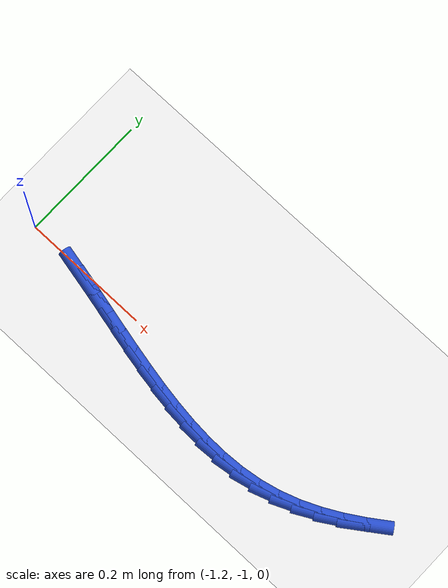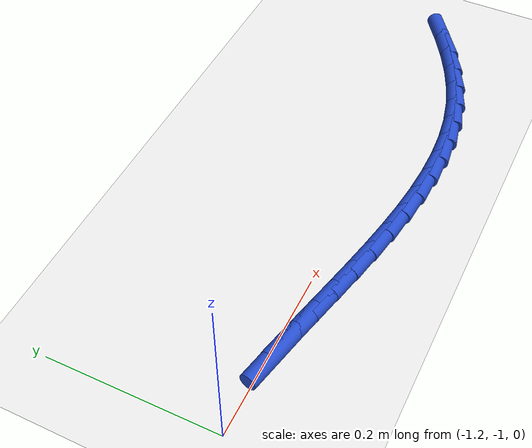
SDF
<sdf version="1.6">
 <world name="default">
  <model name="ground_plane">
   <static>1</static>
   <link name="link">
    <collision name="collision">
     <geometry><plane><normal>0 0 1</normal><size>100 100</size></plane></geometry>
     <surface><friction><ode><mu>100</mu><mu2>50</mu2></ode></friction></surface>
    </collision>
    <visual name="visual">
     <cast_shadows>0</cast_shadows>
     <geometry><plane><normal>0 0 1</normal><size>100 100</size></plane></geometry>
     <material>
      <script><uri>file://media/materials/scripts/gazebo.material</uri><name>Gazebo/WhiteGlow</name></script>
     </material>
    </visual>
   </link>
  </model>
  <model name="line">
   <link name="link_157">
    <pose>-1.104658915932224 -1.0059052333194143 0.01 0 1.57 -0.2153557256395974</pose>
    <collision name="collision">
     <geometry><cylinder><radius>0.01</radius><length>0.08</length></cylinder></geometry>
    </collision>
    <visual name="visual">
     <material>
      <script><name>Gazebo/Blue</name><uri>file://media/materials/scripts/gazebo.material</uri></script>
     </material>
     <geometry><cylinder><radius>0.01</radius><length>0.08</length></cylinder></geometry>
    </visual>
   </link>
   <link name="link_158">
    <pose>-1.0722514834036314 -1.0129942921496535 0.01 0 1.57 -0.22709151694110521</pose>
    <collision name="collision">
     <geometry><cylinder><radius>0.01</radius><length>0.08</length></cylinder></geometry>
    </collision>
    <visual name="visual">
     <material>
      <script><name>Gazebo/Blue</name><uri>file://media/materials/scripts/gazebo.material</uri></script>
     </material>
     <geometry><cylinder><radius>0.01</radius><length>0.08</length></cylinder></geometry>
    </visual>
   </link>
   <link name="link_159">
    <pose>-1.0395407714345182 -1.020553001904141 0.01 0 1.57 -0.23066036260756495</pose>
    <collision name="collision">
     <geometry><cylinder><radius>0.01</radius><length>0.08</length></cylinder></geometry>
    </collision>
    <visual name="visual">
     <material>
      <script><name>Gazebo/Blue</name><uri>file://media/materials/scripts/gazebo.material</uri></script>
     </material>
     <geometry><cylinder><radius>0.01</radius><length>0.08</length></cylinder></geometry>
    </visual>
   </link>
   <link name="link_160">
    <pose>-1.0065901002712745 -1.0282911387035154 0.01 0 1.57 -0.22602225187632505</pose>
    <collision name="collision">
     <geometry><cylinder><radius>0.01</radius><length>0.08</length></cylinder></geometry>
    </collision>
    <visual name="visual">
     <material>
      <script><name>Gazebo/Blue</name><uri>file://media/materials/scripts/gazebo.material</uri></script>
     </material>
     <geometry><cylinder><radius>0.01</radius><length>0.08</length></cylinder></geometry>
    </visual>
   </link>
   <link name="link_161">
    <pose>-0.9734819496391559 -1.0359044050806647 0.01 0 1.57 -0.21320790119155292</pose>
    <collision name="collision">
     <geometry><cylinder><radius>0.01</radius><length>0.08</length></cylinder></geometry>
    </collision>
    <visual name="visual">
     <material>
      <script><name>Gazebo/Blue</name><uri>file://media/materials/scripts/gazebo.material</uri></script>
     </material>
     <geometry><cylinder><radius>0.01</radius><length>0.08</length></cylinder></geometry>
    </visual>
   </link>
   <link name="link_162">
    <pose>-0.9402987992634193 -1.0430885035684778 0.01 0 1.57 -0.19204245035985307</pose>
    <collision name="collision">
     <geometry><cylinder><radius>0.01</radius><length>0.08</length></cylinder></geometry>
    </collision>
    <visual name="visual">
     <material>
      <script><name>Gazebo/Blue</name><uri>file://media/materials/scripts/gazebo.material</uri></script>
     </material>
     <geometry><cylinder><radius>0.01</radius><length>0.08</length></cylinder></geometry>
    </visual>
   </link>
   <link name="link_163">
    <pose>-0.9071231288693208 -1.0495391366998434 0.01 0 1.57 -0.16216483205141186</pose>
    <collision name="collision">
     <geometry><cylinder><radius>0.01</radius><length>0.08</length></cylinder></geometry>
    </collision>
    <visual name="visual">
     <material>
      <script><name>Gazebo/Blue</name><uri>file://media/materials/scripts/gazebo.material</uri></script>
     </material>
     <geometry><cylinder><radius>0.01</radius><length>0.08</length></cylinder></geometry>
    </visual>
   </link>
   <link name="link_164">
    <pose>-0.8740374181821156 -1.05495200700765 0.01 0 1.57 -0.12305798340003392</pose>
    <collision name="collision">
     <geometry><cylinder><radius>0.01</radius><length>0.08</length></cylinder></geometry>
    </collision>
    <visual name="visual">
     <material>
      <script><name>Gazebo/Blue</name><uri>file://media/materials/scripts/gazebo.material</uri></script>
     </material>
     <geometry><cylinder><radius>0.01</radius><length>0.08</length></cylinder></geometry>
    </visual>
   </link>
   <link name="link_165">
    <pose>-0.8411241469270613 -1.0590228170247848 0.01 0 1.57 -0.0741008951526817</pose>
    <collision name="collision">
     <geometry><cylinder><radius>0.01</radius><length>0.08</length></cylinder></geometry>
    </collision>
    <visual name="visual">
     <material>
      <script><name>Gazebo/Blue</name><uri>file://media/materials/scripts/gazebo.material</uri></script>
     </material>
     <geometry><cylinder><radius>0.01</radius><length>0.08</length></cylinder></geometry>
    </visual>
   </link>
   <link name="link_166">
    <pose>-0.8084657948294136 -1.0614472692841372 0.01 0 1.57 -0.01465807946904993</pose>
    <collision name="collision">
     <geometry><cylinder><radius>0.01</radius><length>0.08</length></cylinder></geometry>
    </collision>
    <visual name="visual">
     <material>
      <script><name>Gazebo/Blue</name><uri>file://media/materials/scripts/gazebo.material</uri></script>
     </material>
     <geometry><cylinder><radius>0.01</radius><length>0.08</length></cylinder></geometry>
    </visual>
   </link>
   <link name="link_167">
    <pose>-0.7761448416144289 -1.061921066318596 0.01 0 1.57 0.05577580921519627</pose>
    <collision name="collision">
     <geometry><cylinder><radius>0.01</radius><length>0.08</length></cylinder></geometry>
    </collision>
    <visual name="visual">
     <material>
      <script><name>Gazebo/Blue</name><uri>file://media/materials/scripts/gazebo.material</uri></script>
     </material>
     <geometry><cylinder><radius>0.01</radius><length>0.08</length></cylinder></geometry>
    </visual>
   </link>
   <link name="link_168">
    <pose>-0.7442437670073628 -1.0601399106610494 0.01 0 1.57 0.13736458609986876</pose>
    <collision name="collision">
     <geometry><cylinder><radius>0.01</radius><length>0.08</length></cylinder></geometry>
    </collision>
    <visual name="visual">
     <material>
      <script><name>Gazebo/Blue</name><uri>file://media/materials/scripts/gazebo.material</uri></script>
     </material>
     <geometry><cylinder><radius>0.01</radius><length>0.08</length></cylinder></geometry>
    </visual>
   </link>
   <link name="link_169">
    <pose>-0.7128450507334723 -1.0557995048443858 0.01 0 1.57 0.22966171101445537</pose>
    <collision name="collision">
     <geometry><cylinder><radius>0.01</radius><length>0.08</length></cylinder></geometry>
    </collision>
    <visual name="visual">
     <material>
      <script><name>Gazebo/Blue</name><uri>file://media/materials/scripts/gazebo.material</uri></script>
     </material>
     <geometry><cylinder><radius>0.01</radius><length>0.08</length></cylinder></geometry>
    </visual>
   </link>
   <link name="link_170">
    <pose>-0.6820311634830805 -1.0485956322807444 0.01 0 1.57 0.32694839376276863</pose>
    <collision name="collision">
     <geometry><cylinder><radius>0.01</radius><length>0.08</length></cylinder></geometry>
    </collision>
    <visual name="visual">
     <material>
      <script><name>Gazebo/Blue</name><uri>file://media/materials/scripts/gazebo.material</uri></script>
     </material>
     <geometry><cylinder><radius>0.01</radius><length>0.08</length></cylinder></geometry>
    </visual>
   </link>
   <link name="link_171">
    <pose>-0.6518686161580406 -1.0383669458352802 0.01 0 1.57 0.4145265743980446</pose>
    <collision name="collision">
     <geometry><cylinder><radius>0.01</radius><length>0.08</length></cylinder></geometry>
    </collision>
    <visual name="visual">
     <material>
      <script><name>Gazebo/Blue</name><uri>file://media/materials/scripts/gazebo.material</uri></script>
     </material>
     <geometry><cylinder><radius>0.01</radius><length>0.08</length></cylinder></geometry>
    </visual>
   </link>
   <link name="link_172">
    <pose>-0.6223751020103948 -1.0253891061027465 0.01 0 1.57 0.4899433798076143</pose>
    <collision name="collision">
     <geometry><cylinder><radius>0.01</radius><length>0.08</length></cylinder></geometry>
    </collision>
    <visual name="visual">
     <material>
      <script><name>Gazebo/Blue</name><uri>file://media/materials/scripts/gazebo.material</uri></script>
     </material>
     <geometry><cylinder><radius>0.01</radius><length>0.08</length></cylinder></geometry>
    </visual>
   </link>
   <link name="link_173">
    <pose>-0.5935590125632416 -1.0100210412555772 0.01 0 1.57 0.553931753755339</pose>
    <collision name="collision">
     <geometry><cylinder><radius>0.01</radius><length>0.08</length></cylinder></geometry>
    </collision>
    <visual name="visual">
     <material>
      <script><name>Gazebo/Blue</name><uri>file://media/materials/scripts/gazebo.material</uri></script>
     </material>
     <geometry><cylinder><radius>0.01</radius><length>0.08</length></cylinder></geometry>
    </visual>
   </link>
   <link name="link_174">
    <pose>-0.5654287393396789 -0.9926216794662045 0.01 0 1.57 0.6074524418221524</pose>
    <collision name="collision">
     <geometry><cylinder><radius>0.01</radius><length>0.08</length></cylinder></geometry>
    </collision>
    <visual name="visual">
     <material>
      <script><name>Gazebo/Blue</name><uri>file://media/materials/scripts/gazebo.material</uri></script>
     </material>
     <geometry><cylinder><radius>0.01</radius><length>0.08</length></cylinder></geometry>
    </visual>
   </link>
  </model>
 </world>
</sdf>
